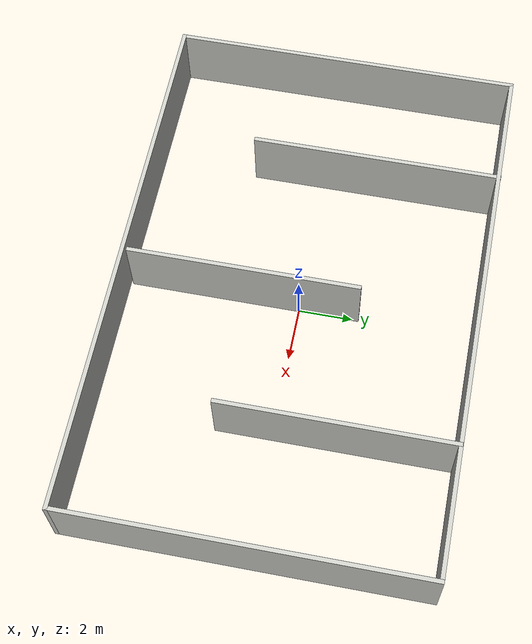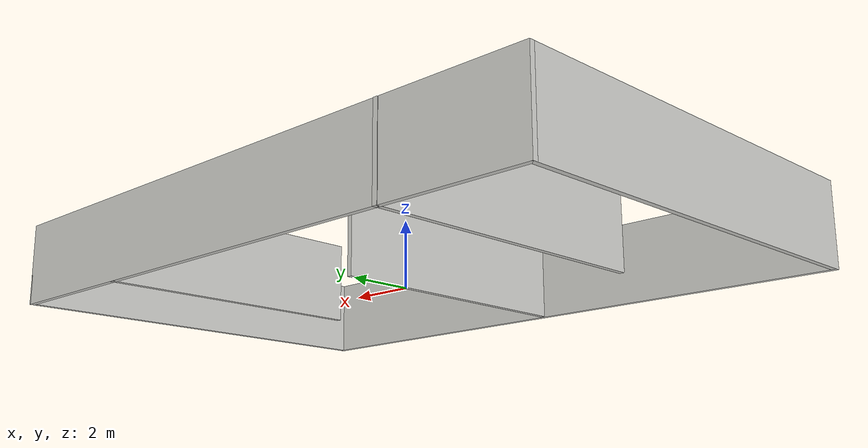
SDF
<?xml version='1.0'?>
<sdf version='1.6'>
  <model name='Easy_travel'>
    <pose frame=''>-0.009267 0.009765 0 0 -0 0</pose>
    <link name='Wall_12'>
      <collision name='Wall_12_Collision'>
        <geometry>
          <box>
            <size>19.75 0.15 2.5</size>
          </box>
        </geometry>
        <pose frame=''>0 0 1.25 0 -0 0</pose>
      </collision>
      <visual name='Wall_12_Visual'>
        <pose frame=''>0 0 1.25 0 -0 0</pose>
        <geometry>
          <box>
            <size>19.75 0.15 2.5</size>
          </box>
        </geometry>
        <material>
          <script>
            <uri>file://media/materials/scripts/gazebo.material</uri>
            <name>Gazebo/CeilingTiled</name>
          </script>
          <ambient>0.447059 0.623529 0.811765 1</ambient>
        </material>
        <meta>
          <layer>0</layer>
        </meta>
      </visual>
      <pose frame=''>-0 6.41827 0 0 -0 0</pose>
    </link>
    <link name='Wall_15'>
      <collision name='Wall_15_Collision'>
        <geometry>
          <box>
            <size>13 0.15 2.5</size>
          </box>
        </geometry>
        <pose frame=''>0 0 1.25 0 -0 0</pose>
      </collision>
      <visual name='Wall_15_Visual'>
        <pose frame=''>0 0 1.25 0 -0 0</pose>
        <geometry>
          <box>
            <size>13 0.15 2.5</size>
          </box>
        </geometry>
        <material>
          <script>
            <uri>file://media/materials/scripts/gazebo.material</uri>
            <name>Gazebo/CeilingTiled</name>
          </script>
          <ambient>0.447059 0.623529 0.811765 1</ambient>
        </material>
        <meta>
          <layer>0</layer>
        </meta>
      </visual>
      <pose frame=''>9.8 -0.006734 0 0 -0 -1.5708</pose>
    </link>
    <link name='Wall_17'>
      <collision name='Wall_17_Collision'>
        <geometry>
          <box>
            <size>13 0.15 2.5</size>
          </box>
        </geometry>
        <pose frame=''>0 0 1.25 0 -0 0</pose>
      </collision>
      <visual name='Wall_17_Visual'>
        <pose frame=''>0 0 1.25 0 -0 0</pose>
        <geometry>
          <box>
            <size>13 0.15 2.5</size>
          </box>
        </geometry>
        <material>
          <script>
            <uri>file://media/materials/scripts/gazebo.material</uri>
            <name>Gazebo/CeilingTiled</name>
          </script>
          <ambient>0.447059 0.623529 0.811765 1</ambient>
        </material>
        <meta>
          <layer>0</layer>
        </meta>
      </visual>
      <pose frame=''>-9.8 -0.006734 0 0 -0 -1.5708</pose>
    </link>
    <link name='Wall_19'>
      <collision name='Wall_19_Collision'>
        <geometry>
          <box>
            <size>19.75 0.15 2.5</size>
          </box>
        </geometry>
        <pose frame=''>0 0 1.25 0 -0 0</pose>
      </collision>
      <visual name='Wall_19_Visual'>
        <pose frame=''>0 0 1.25 0 -0 0</pose>
        <geometry>
          <box>
            <size>19.75 0.15 2.5</size>
          </box>
        </geometry>
        <material>
          <script>
            <uri>file://media/materials/scripts/gazebo.material</uri>
            <name>Gazebo/CeilingTiled</name>
          </script>
          <ambient>0.447059 0.623529 0.811765 1</ambient>
        </material>
        <meta>
          <layer>0</layer>
        </meta>
      </visual>
      <pose frame=''>-0 -6.43173 0 0 -0 0</pose>
    </link>
    <link name='Wall_21'>
      <collision name='Wall_21_Collision'>
        <geometry>
          <box>
            <size>9.25 0.15 2.5</size>
          </box>
        </geometry>
        <pose frame=''>0 0 1.25 0 -0 0</pose>
      </collision>
      <visual name='Wall_21_Visual'>
        <pose frame=''>0 0 1.25 0 -0 0</pose>
        <geometry>
          <box>
            <size>9.25 0.15 2.5</size>
          </box>
        </geometry>
        <material>
          <script>
            <uri>file://media/materials/scripts/gazebo.material</uri>
            <name>Gazebo/CeilingTiled</name>
          </script>
          <ambient>0.996078 0.47451 0.0196078 1</ambient>
        </material>
        <meta>
          <layer>0</layer>
        </meta>
      </visual>
      <pose frame=''>-5.53511 1.88173 0 0 -0 -1.5708</pose>
    </link>
    <link name='Wall_23'>
      <collision name='Wall_23_Collision'>
        <geometry>
          <box>
            <size>8.5 0.15 2.5</size>
          </box>
        </geometry>
        <pose frame=''>0 0 1.25 0 -0 0</pose>
      </collision>
      <visual name='Wall_23_Visual'>
        <pose frame=''>0 0 1.25 0 -0 0</pose>
        <geometry>
          <box>
            <size>8.5 0.15 2.5</size>
          </box>
        </geometry>
        <material>
          <script>
            <uri>file://media/materials/scripts/gazebo.material</uri>
            <name>Gazebo/CeilingTiled</name>
          </script>
          <ambient>0.996078 0.47451 0.0196078 1</ambient>
        </material>
        <meta>
          <layer>0</layer>
        </meta>
      </visual>
      <pose frame=''>-0.028872 -2.0259 0 0 -0 -1.5708</pose>
    </link>
    <link name='Wall_25'>
      <collision name='Wall_25_Collision'>
        <geometry>
          <box>
            <size>8.5 0.15 2.5</size>
          </box>
        </geometry>
        <pose frame=''>0 0 1.25 0 -0 0</pose>
      </collision>
      <visual name='Wall_25_Visual'>
        <pose frame=''>0 0 1.25 0 -0 0</pose>
        <geometry>
          <box>
            <size>8.5 0.15 2.5</size>
          </box>
        </geometry>
        <material>
          <script>
            <uri>file://media/materials/scripts/gazebo.material</uri>
            <name>Gazebo/CeilingTiled</name>
          </script>
          <ambient>0.996078 0.47451 0.0196078 1</ambient>
        </material>
        <meta>
          <layer>0</layer>
        </meta>
      </visual>
      <pose frame=''>5.14088 2.22614 0 0 -0 -1.5708</pose>
    </link>
    <static>1</static>
  </model>
</sdf>
